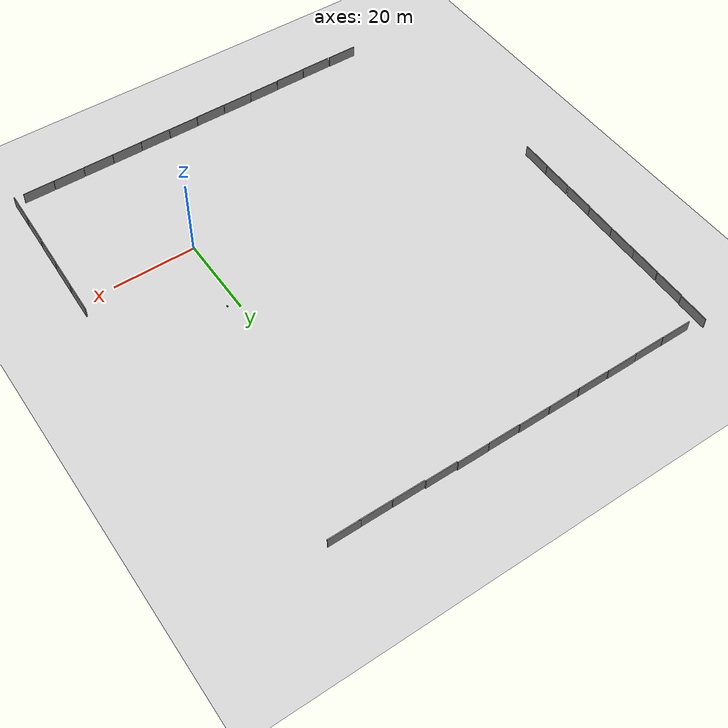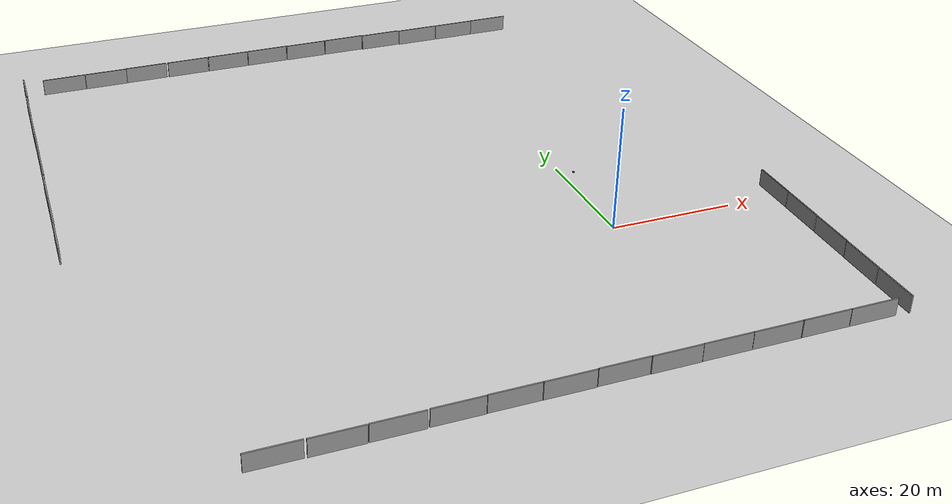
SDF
<sdf version="1.7">
 <world name="default">
  <light name="sun" type="directional">
   <pose>0 0 10 0 -0 0</pose>
   <diffuse>0.8 0.8 0.8 1</diffuse>
   <specular>0.2 0.2 0.2 1</specular>
   <attenuation>
    <range>1000</range>
    <constant>0.9</constant>
    <linear>0.01</linear>
    <quadratic>0.001</quadratic>
   </attenuation>
   <direction>-0.5 0.1 -0.9</direction>
   <spot><inner_angle>0</inner_angle><outer_angle>0</outer_angle><falloff>0</falloff></spot>
  </light>
  <model name="ground_plane">
   <static>1</static>
   <link name="link">
    <collision name="collision">
     <geometry><plane><normal>0 0 1</normal><size>100 100</size></plane></geometry>
     <surface><friction><ode><mu>100</mu><mu2>50</mu2></ode></friction></surface>
    </collision>
    <visual name="visual">
     <cast_shadows>0</cast_shadows>
     <geometry><plane><normal>0 0 1</normal><size>100 100</size></plane></geometry>
     <material>
      <script><uri>file://media/materials/scripts/gazebo.material</uri><name>Gazebo/Grey</name></script>
     </material>
    </visual>
    <velocity_decay><linear>0</linear><angular>0</angular></velocity_decay>
   </link>
  </model>
  <physics type="ode">
   <max_step_size>0.01</max_step_size>
   <real_time_factor>1</real_time_factor>
   <real_time_update_rate>100</real_time_update_rate>
  </physics>
  <scene><ambient>0.4 0.4 0.4 1</ambient><background>0.7 0.7 0.7 1</background><shadows>1</shadows></scene>
  <model name="asphalt_plane">
   <static>1</static>
   <link name="link">
    <collision name="collision"><geometry><box><size>0.248903 0.442488 0.1</size></box></geometry></collision>
    <visual name="visual">
     <cast_shadows>0</cast_shadows>
     <geometry><box><size>0.248903 0.442488 0.1</size></box></geometry>
     <material>
      <script>
       <uri>model://asphalt_plane/materials/scripts</uri>
       <uri>model://asphalt_plane/materials/textures</uri>
       <name>vrc/asphalt</name>
      </script>
     </material>
    </visual>
    <velocity_decay><linear>0</linear><angular>0</angular></velocity_decay>
   </link>
   <pose>2.27833 18.2033 0 0 -0 0</pose>
  </model>
  <gravity>0 0 -9.8</gravity>
  <magnetic_field>6e-06 2.3e-05 -4.2e-05</magnetic_field>
  <atmosphere type="adiabatic"/>
  <spherical_coordinates>
   <surface_model>EARTH_WGS84</surface_model>
   <latitude_deg>0</latitude_deg>
   <longitude_deg>0</longitude_deg>
   <elevation>0</elevation>
   <heading_deg>0</heading_deg>
  </spherical_coordinates>
  <model name="grey_wall">
   <static>1</static>
   <link name="link">
    <pose>0 0 1.4 0 -0 0</pose>
    <collision name="collision"><geometry><box><size>7.5 0.2 2.8</size></box></geometry></collision>
    <visual name="visual">
     <cast_shadows>0</cast_shadows>
     <geometry><box><size>7.5 0.2 2.8</size></box></geometry>
     <material>
      <script>
       <uri>model://grey_wall/materials/scripts</uri>
       <uri>model://grey_wall/materials/textures</uri>
       <name>vrc/grey_wall</name>
      </script>
     </material>
    </visual>
   </link>
   <pose>21.3066 -33.9969 0 0 -0 0</pose>
  </model>
  <model name="grey_wall_clone">
   <static>1</static>
   <link name="link">
    <pose>0 0 1.4 0 -0 0</pose>
    <collision name="collision"><geometry><box><size>7.5 0.2 2.8</size></box></geometry></collision>
    <visual name="visual">
     <cast_shadows>0</cast_shadows>
     <geometry><box><size>7.5 0.2 2.8</size></box></geometry>
     <material>
      <script>
       <uri>model://grey_wall/materials/scripts</uri>
       <uri>model://grey_wall/materials/textures</uri>
       <name>vrc/grey_wall</name>
      </script>
     </material>
    </visual>
   </link>
   <pose>13.7449 -33.9887 0 0 -0 0</pose>
  </model>
  <model name="grey_wall_clone_clone">
   <static>1</static>
   <link name="link">
    <pose>0 0 1.4 0 -0 0</pose>
    <collision name="collision"><geometry><box><size>7.5 0.2 2.8</size></box></geometry></collision>
    <visual name="visual">
     <cast_shadows>0</cast_shadows>
     <geometry><box><size>7.5 0.2 2.8</size></box></geometry>
     <material>
      <script>
       <uri>model://grey_wall/materials/scripts</uri>
       <uri>model://grey_wall/materials/textures</uri>
       <name>vrc/grey_wall</name>
      </script>
     </material>
    </visual>
   </link>
   <pose>6.06627 -34.0084 0 0 -0 0</pose>
  </model>
  <model name="grey_wall_clone_clone_0">
   <static>1</static>
   <link name="link">
    <pose>0 0 1.4 0 -0 0</pose>
    <collision name="collision"><geometry><box><size>7.5 0.2 2.8</size></box></geometry></collision>
    <visual name="visual">
     <cast_shadows>0</cast_shadows>
     <geometry><box><size>7.5 0.2 2.8</size></box></geometry>
     <material>
      <script>
       <uri>model://grey_wall/materials/scripts</uri>
       <uri>model://grey_wall/materials/textures</uri>
       <name>vrc/grey_wall</name>
      </script>
     </material>
    </visual>
   </link>
   <pose>-1.47957 -34.0113 0 0 -0 0</pose>
  </model>
  <model name="grey_wall_clone_clone_1">
   <static>1</static>
   <link name="link">
    <pose>0 0 1.4 0 -0 0</pose>
    <collision name="collision"><geometry><box><size>7.5 0.2 2.8</size></box></geometry></collision>
    <visual name="visual">
     <cast_shadows>0</cast_shadows>
     <geometry><box><size>7.5 0.2 2.8</size></box></geometry>
     <material>
      <script>
       <uri>model://grey_wall/materials/scripts</uri>
       <uri>model://grey_wall/materials/textures</uri>
       <name>vrc/grey_wall</name>
      </script>
     </material>
    </visual>
   </link>
   <pose>-9.04694 -34.0603 0 0 -0 0</pose>
  </model>
  <model name="grey_wall_clone_clone_2">
   <static>1</static>
   <link name="link">
    <pose>0 0 1.4 0 -0 0</pose>
    <collision name="collision"><geometry><box><size>7.5 0.2 2.8</size></box></geometry></collision>
    <visual name="visual">
     <cast_shadows>0</cast_shadows>
     <geometry><box><size>7.5 0.2 2.8</size></box></geometry>
     <material>
      <script>
       <uri>model://grey_wall/materials/scripts</uri>
       <uri>model://grey_wall/materials/textures</uri>
       <name>vrc/grey_wall</name>
      </script>
     </material>
    </visual>
   </link>
   <pose>-16.6774 -34.0204 0 0 -0 0</pose>
  </model>
  <model name="grey_wall_clone_clone_3">
   <static>1</static>
   <link name="link">
    <pose>0 0 1.4 0 -0 0</pose>
    <collision name="collision"><geometry><box><size>7.5 0.2 2.8</size></box></geometry></collision>
    <visual name="visual">
     <cast_shadows>0</cast_shadows>
     <geometry><box><size>7.5 0.2 2.8</size></box></geometry>
     <material>
      <script>
       <uri>model://grey_wall/materials/scripts</uri>
       <uri>model://grey_wall/materials/textures</uri>
       <name>vrc/grey_wall</name>
      </script>
     </material>
    </visual>
   </link>
   <pose>-24.3089 -34.1049 0 0 -0 0</pose>
  </model>
  <model name="grey_wall_clone_clone_4">
   <static>1</static>
   <link name="link">
    <pose>0 0 1.4 0 -0 0</pose>
    <collision name="collision"><geometry><box><size>7.5 0.2 2.8</size></box></geometry></collision>
    <visual name="visual">
     <cast_shadows>0</cast_shadows>
     <geometry><box><size>7.5 0.2 2.8</size></box></geometry>
     <material>
      <script>
       <uri>model://grey_wall/materials/scripts</uri>
       <uri>model://grey_wall/materials/textures</uri>
       <name>vrc/grey_wall</name>
      </script>
     </material>
    </visual>
   </link>
   <pose>-31.893 -34.0826 0 0 -0 0</pose>
  </model>
  <model name="grey_wall_clone_clone_5">
   <static>1</static>
   <link name="link">
    <pose>0 0 1.4 0 -0 0</pose>
    <collision name="collision"><geometry><box><size>7.5 0.2 2.8</size></box></geometry></collision>
    <visual name="visual">
     <cast_shadows>0</cast_shadows>
     <geometry><box><size>7.5 0.2 2.8</size></box></geometry>
     <material>
      <script>
       <uri>model://grey_wall/materials/scripts</uri>
       <uri>model://grey_wall/materials/textures</uri>
       <name>vrc/grey_wall</name>
      </script>
     </material>
    </visual>
   </link>
   <pose>-39.4887 -34.1475 0 0 -0 0</pose>
  </model>
  <model name="grey_wall_clone_clone_6">
   <static>1</static>
   <link name="link">
    <pose>0 0 1.4 0 -0 0</pose>
    <collision name="collision"><geometry><box><size>7.5 0.2 2.8</size></box></geometry></collision>
    <visual name="visual">
     <cast_shadows>0</cast_shadows>
     <geometry><box><size>7.5 0.2 2.8</size></box></geometry>
     <material>
      <script>
       <uri>model://grey_wall/materials/scripts</uri>
       <uri>model://grey_wall/materials/textures</uri>
       <name>vrc/grey_wall</name>
      </script>
     </material>
    </visual>
   </link>
   <pose>-47.3001 -34.2563 0 0 -0 0</pose>
  </model>
  <model name="grey_wall_clone_clone_7">
   <static>1</static>
   <link name="link">
    <pose>0 0 1.4 0 -0 0</pose>
    <collision name="collision"><geometry><box><size>7.5 0.2 2.8</size></box></geometry></collision>
    <visual name="visual">
     <cast_shadows>0</cast_shadows>
     <geometry><box><size>7.5 0.2 2.8</size></box></geometry>
     <material>
      <script>
       <uri>model://grey_wall/materials/scripts</uri>
       <uri>model://grey_wall/materials/textures</uri>
       <name>vrc/grey_wall</name>
      </script>
     </material>
    </visual>
   </link>
   <pose>-54.9877 -34.3147 0 0 -0 0</pose>
  </model>
  <model name="grey_wall_clone_clone_8">
   <static>1</static>
   <link name="link">
    <pose>0 0 1.4 0 -0 0</pose>
    <collision name="collision"><geometry><box><size>7.5 0.2 2.8</size></box></geometry></collision>
    <visual name="visual">
     <cast_shadows>0</cast_shadows>
     <geometry><box><size>7.5 0.2 2.8</size></box></geometry>
     <material>
      <script>
       <uri>model://grey_wall/materials/scripts</uri>
       <uri>model://grey_wall/materials/textures</uri>
       <name>vrc/grey_wall</name>
      </script>
     </material>
    </visual>
   </link>
   <pose>-62.86 -34.2519 0 0 -0 0</pose>
  </model>
  <model name="grey_wall_clone_clone_8_clone">
   <static>1</static>
   <link name="link">
    <pose>0 0 1.4 0 -0 0</pose>
    <collision name="collision"><geometry><box><size>7.5 0.2 2.8</size></box></geometry></collision>
    <visual name="visual">
     <cast_shadows>0</cast_shadows>
     <geometry><box><size>7.5 0.2 2.8</size></box></geometry>
     <material>
      <script>
       <uri>model://grey_wall/materials/scripts</uri>
       <uri>model://grey_wall/materials/textures</uri>
       <name>vrc/grey_wall</name>
      </script>
     </material>
    </visual>
   </link>
   <pose>12.4051 77.7581 0 0 -0 0</pose>
  </model>
  <model name="grey_wall_clone_clone_8_clone_clone">
   <static>1</static>
   <link name="link">
    <pose>0 0 1.4 0 -0 0</pose>
    <collision name="collision"><geometry><box><size>7.5 0.2 2.8</size></box></geometry></collision>
    <visual name="visual">
     <cast_shadows>0</cast_shadows>
     <geometry><box><size>7.5 0.2 2.8</size></box></geometry>
     <material>
      <script>
       <uri>model://grey_wall/materials/scripts</uri>
       <uri>model://grey_wall/materials/textures</uri>
       <name>vrc/grey_wall</name>
      </script>
     </material>
    </visual>
   </link>
   <pose>5.2438 77.7325 0 0 -0 0</pose>
  </model>
  <model name="grey_wall_clone_clone_8_clone_clone_0">
   <static>1</static>
   <link name="link">
    <pose>0 0 1.4 0 -0 0</pose>
    <collision name="collision"><geometry><box><size>7.5 0.2 2.8</size></box></geometry></collision>
    <visual name="visual">
     <cast_shadows>0</cast_shadows>
     <geometry><box><size>7.5 0.2 2.8</size></box></geometry>
     <material>
      <script>
       <uri>model://grey_wall/materials/scripts</uri>
       <uri>model://grey_wall/materials/textures</uri>
       <name>vrc/grey_wall</name>
      </script>
     </material>
    </visual>
   </link>
   <pose>-2.43779 77.7631 0 0 -0 0</pose>
  </model>
  <model name="grey_wall_clone_clone_8_clone_clone_1">
   <static>1</static>
   <link name="link">
    <pose>0 0 1.4 0 -0 0</pose>
    <collision name="collision"><geometry><box><size>7.5 0.2 2.8</size></box></geometry></collision>
    <visual name="visual">
     <cast_shadows>0</cast_shadows>
     <geometry><box><size>7.5 0.2 2.8</size></box></geometry>
     <material>
      <script>
       <uri>model://grey_wall/materials/scripts</uri>
       <uri>model://grey_wall/materials/textures</uri>
       <name>vrc/grey_wall</name>
      </script>
     </material>
    </visual>
   </link>
   <pose>-10.0185 77.9776 0 0 -0 0</pose>
  </model>
  <model name="grey_wall_clone_clone_8_clone_clone_2">
   <static>1</static>
   <link name="link">
    <pose>0 0 1.4 0 -0 0</pose>
    <collision name="collision"><geometry><box><size>7.5 0.2 2.8</size></box></geometry></collision>
    <visual name="visual">
     <cast_shadows>0</cast_shadows>
     <geometry><box><size>7.5 0.2 2.8</size></box></geometry>
     <material>
      <script>
       <uri>model://grey_wall/materials/scripts</uri>
       <uri>model://grey_wall/materials/textures</uri>
       <name>vrc/grey_wall</name>
      </script>
     </material>
    </visual>
   </link>
   <pose>-17.5855 78.1917 0 0 -0 0</pose>
  </model>
  <model name="grey_wall_clone_clone_8_clone_clone_3">
   <static>1</static>
   <link name="link">
    <pose>0 0 1.4 0 -0 0</pose>
    <collision name="collision"><geometry><box><size>7.5 0.2 2.8</size></box></geometry></collision>
    <visual name="visual">
     <cast_shadows>0</cast_shadows>
     <geometry><box><size>7.5 0.2 2.8</size></box></geometry>
     <material>
      <script>
       <uri>model://grey_wall/materials/scripts</uri>
       <uri>model://grey_wall/materials/textures</uri>
       <name>vrc/grey_wall</name>
      </script>
     </material>
    </visual>
   </link>
   <pose>-25.2441 78.1431 0 0 -0 0</pose>
  </model>
  <model name="grey_wall_clone_clone_8_clone_clone_4">
   <static>1</static>
   <link name="link">
    <pose>0 0 1.4 0 -0 0</pose>
    <collision name="collision"><geometry><box><size>7.5 0.2 2.8</size></box></geometry></collision>
    <visual name="visual">
     <cast_shadows>0</cast_shadows>
     <geometry><box><size>7.5 0.2 2.8</size></box></geometry>
     <material>
      <script>
       <uri>model://grey_wall/materials/scripts</uri>
       <uri>model://grey_wall/materials/textures</uri>
       <name>vrc/grey_wall</name>
      </script>
     </material>
    </visual>
   </link>
   <pose>-32.8891 78.2304 0 0 -0 0</pose>
  </model>
  <model name="grey_wall_clone_clone_8_clone_clone_5">
   <static>1</static>
   <link name="link">
    <pose>0 0 1.4 0 -0 0</pose>
    <collision name="collision"><geometry><box><size>7.5 0.2 2.8</size></box></geometry></collision>
    <visual name="visual">
     <cast_shadows>0</cast_shadows>
     <geometry><box><size>7.5 0.2 2.8</size></box></geometry>
     <material>
      <script>
       <uri>model://grey_wall/materials/scripts</uri>
       <uri>model://grey_wall/materials/textures</uri>
       <name>vrc/grey_wall</name>
      </script>
     </material>
    </visual>
   </link>
   <pose>-40.5203 78.2417 0 0 -0 0</pose>
  </model>
  <model name="grey_wall_clone_clone_8_clone_clone_6">
   <static>1</static>
   <link name="link">
    <pose>0 0 1.4 0 -0 0</pose>
    <collision name="collision"><geometry><box><size>7.5 0.2 2.8</size></box></geometry></collision>
    <visual name="visual">
     <cast_shadows>0</cast_shadows>
     <geometry><box><size>7.5 0.2 2.8</size></box></geometry>
     <material>
      <script>
       <uri>model://grey_wall/materials/scripts</uri>
       <uri>model://grey_wall/materials/textures</uri>
       <name>vrc/grey_wall</name>
      </script>
     </material>
    </visual>
   </link>
   <pose>-48.1973 78.2324 0 0 -0 0</pose>
  </model>
  <model name="grey_wall_clone_clone_8_clone_clone_7">
   <static>1</static>
   <link name="link">
    <pose>0 0 1.4 0 -0 0</pose>
    <collision name="collision"><geometry><box><size>7.5 0.2 2.8</size></box></geometry></collision>
    <visual name="visual">
     <cast_shadows>0</cast_shadows>
     <geometry><box><size>7.5 0.2 2.8</size></box></geometry>
     <material>
      <script>
       <uri>model://grey_wall/materials/scripts</uri>
       <uri>model://grey_wall/materials/textures</uri>
       <name>vrc/grey_wall</name>
      </script>
     </material>
    </visual>
   </link>
   <pose>-56.0264 78.2736 0 0 -0 0</pose>
  </model>
  <model name="grey_wall_clone_clone_8_clone_clone_8">
   <static>1</static>
   <link name="link">
    <pose>0 0 1.4 0 -0 0</pose>
    <collision name="collision"><geometry><box><size>7.5 0.2 2.8</size></box></geometry></collision>
    <visual name="visual">
     <cast_shadows>0</cast_shadows>
     <geometry><box><size>7.5 0.2 2.8</size></box></geometry>
     <material>
      <script>
       <uri>model://grey_wall/materials/scripts</uri>
       <uri>model://grey_wall/materials/textures</uri>
       <name>vrc/grey_wall</name>
      </script>
     </material>
    </visual>
   </link>
   <pose>-63.486 78.2144 0 0 -0 0</pose>
  </model>
  <model name="grey_wall_clone_clone_8_clone_clone_9">
   <static>1</static>
   <link name="link">
    <pose>0 0 1.4 0 -0 0</pose>
    <collision name="collision"><geometry><box><size>7.5 0.2 2.8</size></box></geometry></collision>
    <visual name="visual">
     <cast_shadows>0</cast_shadows>
     <geometry><box><size>7.5 0.2 2.8</size></box></geometry>
     <material>
      <script>
       <uri>model://grey_wall/materials/scripts</uri>
       <uri>model://grey_wall/materials/textures</uri>
       <name>vrc/grey_wall</name>
      </script>
     </material>
    </visual>
   </link>
   <pose>-71.0514 78.2451 0 0 -0 0</pose>
  </model>
  <model name="grey_wall_clone_clone_8_clone_clone_10">
   <static>1</static>
   <link name="link">
    <pose>0 0 1.4 0 -0 0</pose>
    <collision name="collision"><geometry><box><size>7.5 0.2 2.8</size></box></geometry></collision>
    <visual name="visual">
     <cast_shadows>0</cast_shadows>
     <geometry><box><size>7.5 0.2 2.8</size></box></geometry>
     <material>
      <script>
       <uri>model://grey_wall/materials/scripts</uri>
       <uri>model://grey_wall/materials/textures</uri>
       <name>vrc/grey_wall</name>
      </script>
     </material>
    </visual>
   </link>
   <pose>-78.1717 76.0824 0 0 -0 1.54255</pose>
  </model>
  <model name="grey_wall_clone_clone_8_clone_clone_10_clone">
   <static>1</static>
   <link name="link">
    <pose>0 0 1.4 0 -0 0</pose>
    <collision name="collision"><geometry><box><size>7.5 0.2 2.8</size></box></geometry></collision>
    <visual name="visual">
     <cast_shadows>0</cast_shadows>
     <geometry><box><size>7.5 0.2 2.8</size></box></geometry>
     <material>
      <script>
       <uri>model://grey_wall/materials/scripts</uri>
       <uri>model://grey_wall/materials/textures</uri>
       <name>vrc/grey_wall</name>
      </script>
     </material>
    </visual>
   </link>
   <pose>-78.5032 68.4416 0 0 -0 1.54255</pose>
  </model>
  <model name="grey_wall_clone_clone_8_clone_clone_10_clone_0">
   <static>1</static>
   <link name="link">
    <pose>0 0 1.4 0 -0 0</pose>
    <collision name="collision"><geometry><box><size>7.5 0.2 2.8</size></box></geometry></collision>
    <visual name="visual">
     <cast_shadows>0</cast_shadows>
     <geometry><box><size>7.5 0.2 2.8</size></box></geometry>
     <material>
      <script>
       <uri>model://grey_wall/materials/scripts</uri>
       <uri>model://grey_wall/materials/textures</uri>
       <name>vrc/grey_wall</name>
      </script>
     </material>
    </visual>
   </link>
   <pose>-78.7629 60.7198 0 0 -0 1.54255</pose>
  </model>
  <model name="grey_wall_clone_clone_8_clone_clone_10_clone_1">
   <static>1</static>
   <link name="link">
    <pose>0 0 1.4 0 -0 0</pose>
    <collision name="collision"><geometry><box><size>7.5 0.2 2.8</size></box></geometry></collision>
    <visual name="visual">
     <cast_shadows>0</cast_shadows>
     <geometry><box><size>7.5 0.2 2.8</size></box></geometry>
     <material>
      <script>
       <uri>model://grey_wall/materials/scripts</uri>
       <uri>model://grey_wall/materials/textures</uri>
       <name>vrc/grey_wall</name>
      </script>
     </material>
    </visual>
   </link>
   <pose>-78.9554 53.2375 0 0 -0 1.54255</pose>
  </model>
  <model name="grey_wall_clone_clone_8_clone_clone_10_clone_2">
   <static>1</static>
   <link name="link">
    <pose>0 0 1.4 0 -0 0</pose>
    <collision name="collision"><geometry><box><size>7.5 0.2 2.8</size></box></geometry></collision>
    <visual name="visual">
     <cast_shadows>0</cast_shadows>
     <geometry><box><size>7.5 0.2 2.8</size></box></geometry>
     <material>
      <script>
       <uri>model://grey_wall/materials/scripts</uri>
       <uri>model://grey_wall/materials/textures</uri>
       <name>vrc/grey_wall</name>
      </script>
     </material>
    </visual>
   </link>
   <pose>-79.1953 45.622 0 0 -0 1.54255</pose>
  </model>
  <model name="grey_wall_clone_clone_8_clone_clone_10_clone_3">
   <static>1</static>
   <link name="link">
    <pose>0 0 1.4 0 -0 0</pose>
    <collision name="collision"><geometry><box><size>7.5 0.2 2.8</size></box></geometry></collision>
    <visual name="visual">
     <cast_shadows>0</cast_shadows>
     <geometry><box><size>7.5 0.2 2.8</size></box></geometry>
     <material>
      <script>
       <uri>model://grey_wall/materials/scripts</uri>
       <uri>model://grey_wall/materials/textures</uri>
       <name>vrc/grey_wall</name>
      </script>
     </material>
    </visual>
   </link>
   <pose>-79.4921 37.9531 0 0 -0 1.54255</pose>
  </model>
  <model name="grey_wall_clone_clone_8_clone_clone_10_clone_4">
   <static>1</static>
   <link name="link">
    <pose>0 0 1.4 0 -0 0</pose>
    <collision name="collision"><geometry><box><size>7.5 0.2 2.8</size></box></geometry></collision>
    <visual name="visual">
     <cast_shadows>0</cast_shadows>
     <geometry><box><size>7.5 0.2 2.8</size></box></geometry>
     <material>
      <script>
       <uri>model://grey_wall/materials/scripts</uri>
       <uri>model://grey_wall/materials/textures</uri>
       <name>vrc/grey_wall</name>
      </script>
     </material>
    </visual>
   </link>
   <pose>-79.7122 30.0515 0 0 -0 1.54255</pose>
  </model>
  <model name="grey_wall_clone_clone_8_clone_clone_10_clone_5">
   <static>1</static>
   <link name="link">
    <pose>0 0 1.4 0 -0 0</pose>
    <collision name="collision"><geometry><box><size>7.5 0.2 2.8</size></box></geometry></collision>
    <visual name="visual">
     <cast_shadows>0</cast_shadows>
     <geometry><box><size>7.5 0.2 2.8</size></box></geometry>
     <material>
      <script>
       <uri>model://grey_wall/materials/scripts</uri>
       <uri>model://grey_wall/materials/textures</uri>
       <name>vrc/grey_wall</name>
      </script>
     </material>
    </visual>
   </link>
   <pose>-79.9996 22.3567 0 0 -0 1.54255</pose>
  </model>
  <model name="grey_wall_clone_clone_8_clone_clone_10_clone_4_clone">
   <static>1</static>
   <link name="link">
    <pose>0 0 1.4 0 -0 0</pose>
    <collision name="collision"><geometry><box><size>7.5 0.2 2.8</size></box></geometry></collision>
    <visual name="visual">
     <cast_shadows>0</cast_shadows>
     <geometry><box><size>7.5 0.2 2.8</size></box></geometry>
     <material>
      <script>
       <uri>model://grey_wall/materials/scripts</uri>
       <uri>model://grey_wall/materials/textures</uri>
       <name>vrc/grey_wall</name>
      </script>
     </material>
    </visual>
   </link>
   <pose>27.3434 -30.5201 0 0 -0 1.54255</pose>
  </model>
  <model name="grey_wall_clone_clone_8_clone_clone_10_clone_4_clone_0">
   <static>1</static>
   <link name="link">
    <pose>0 0 1.4 0 -0 0</pose>
    <collision name="collision"><geometry><box><size>7.5 0.2 2.8</size></box></geometry></collision>
    <visual name="visual">
     <cast_shadows>0</cast_shadows>
     <geometry><box><size>7.5 0.2 2.8</size></box></geometry>
     <material>
      <script>
       <uri>model://grey_wall/materials/scripts</uri>
       <uri>model://grey_wall/materials/textures</uri>
       <name>vrc/grey_wall</name>
      </script>
     </material>
    </visual>
   </link>
   <pose>27.5608 -22.8728 0 0 -0 1.54255</pose>
  </model>
  <model name="grey_wall_clone_clone_8_clone_clone_10_clone_4_clone_1">
   <static>1</static>
   <link name="link">
    <pose>0 0 1.4 0 -0 0</pose>
    <collision name="collision"><geometry><box><size>7.5 0.2 2.8</size></box></geometry></collision>
    <visual name="visual">
     <cast_shadows>0</cast_shadows>
     <geometry><box><size>7.5 0.2 2.8</size></box></geometry>
     <material>
      <script>
       <uri>model://grey_wall/materials/scripts</uri>
       <uri>model://grey_wall/materials/textures</uri>
       <name>vrc/grey_wall</name>
      </script>
     </material>
    </visual>
   </link>
   <pose>27.8298 -15.2441 0 0 -0 1.54255</pose>
  </model>
  <model name="grey_wall_clone_clone_8_clone_clone_10_clone_4_clone_2">
   <static>1</static>
   <link name="link">
    <pose>0 0 1.4 0 -0 0</pose>
    <collision name="collision"><geometry><box><size>7.5 0.2 2.8</size></box></geometry></collision>
    <visual name="visual">
     <cast_shadows>0</cast_shadows>
     <geometry><box><size>7.5 0.2 2.8</size></box></geometry>
     <material>
      <script>
       <uri>model://grey_wall/materials/scripts</uri>
       <uri>model://grey_wall/materials/textures</uri>
       <name>vrc/grey_wall</name>
      </script>
     </material>
    </visual>
   </link>
   <pose>28.0761 -7.50752 0 0 -0 1.54255</pose>
  </model>
  <model name="grey_wall_clone_clone_8_clone_clone_10_clone_4_clone_3">
   <static>1</static>
   <link name="link">
    <pose>0 0 1.4 0 -0 0</pose>
    <collision name="collision"><geometry><box><size>7.5 0.2 2.8</size></box></geometry></collision>
    <visual name="visual">
     <cast_shadows>0</cast_shadows>
     <geometry><box><size>7.5 0.2 2.8</size></box></geometry>
     <material>
      <script>
       <uri>model://grey_wall/materials/scripts</uri>
       <uri>model://grey_wall/materials/textures</uri>
       <name>vrc/grey_wall</name>
      </script>
     </material>
    </visual>
   </link>
   <pose>28.3181 0.220947 0 0 -0 1.54255</pose>
  </model>
 </world>
</sdf>
